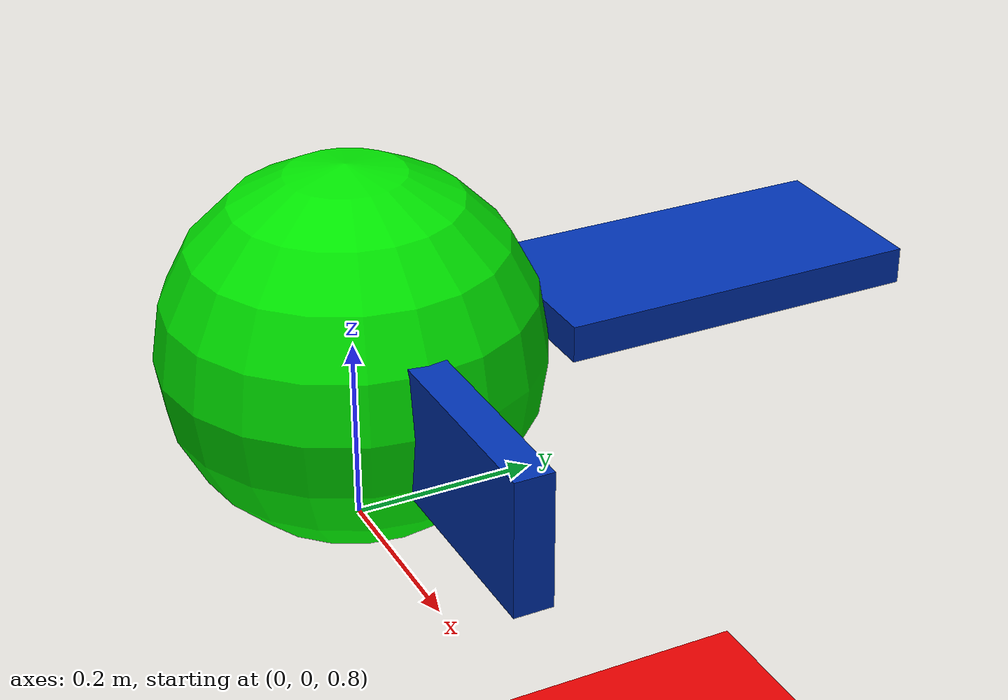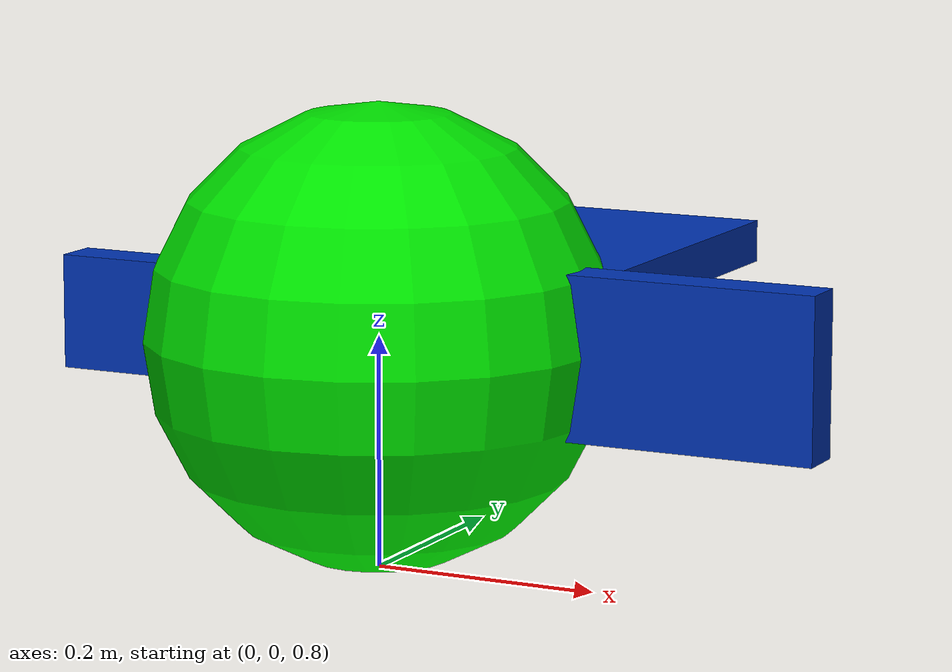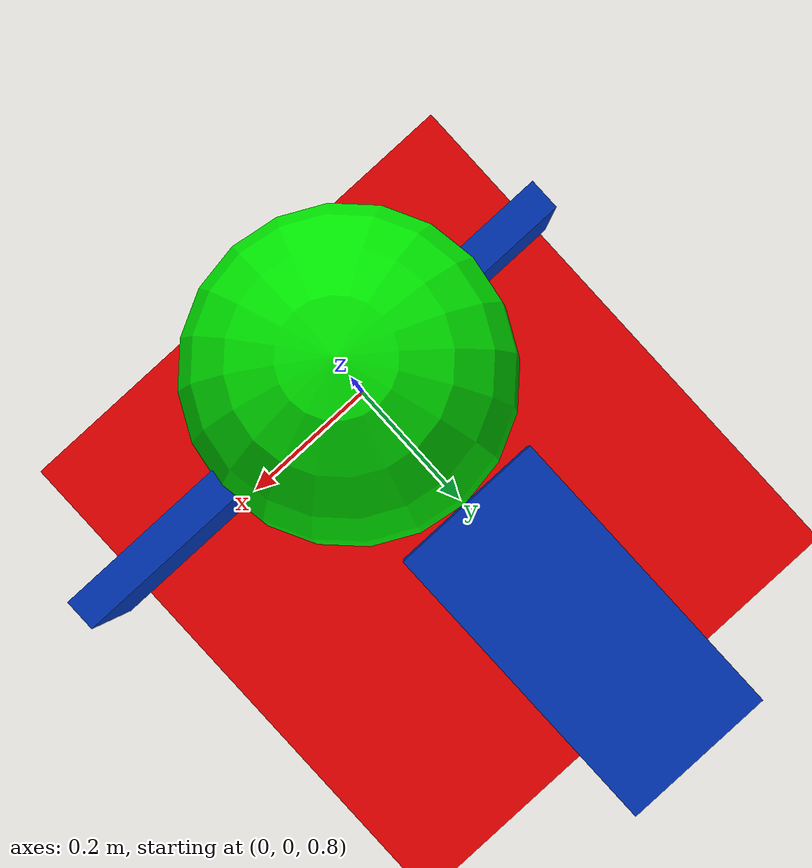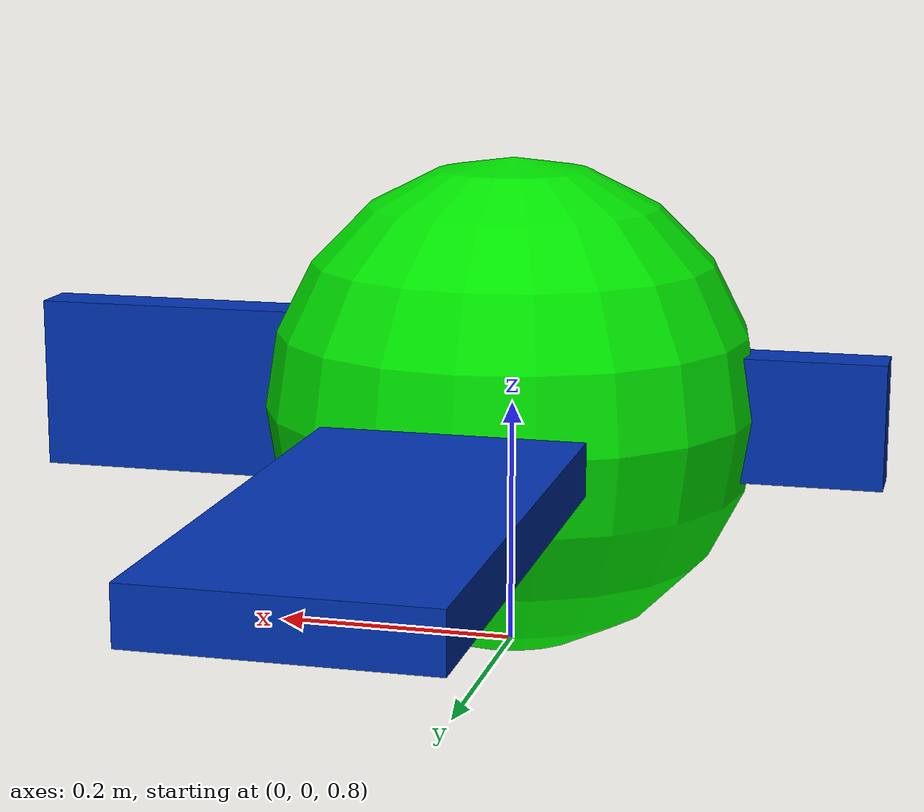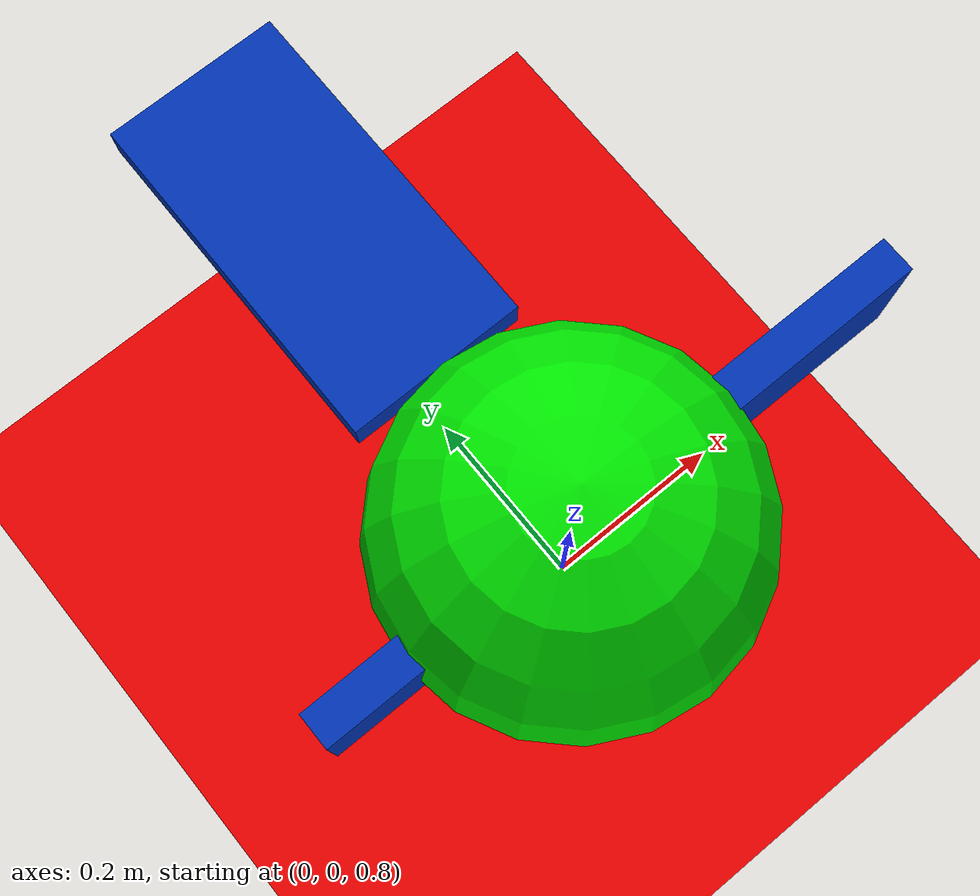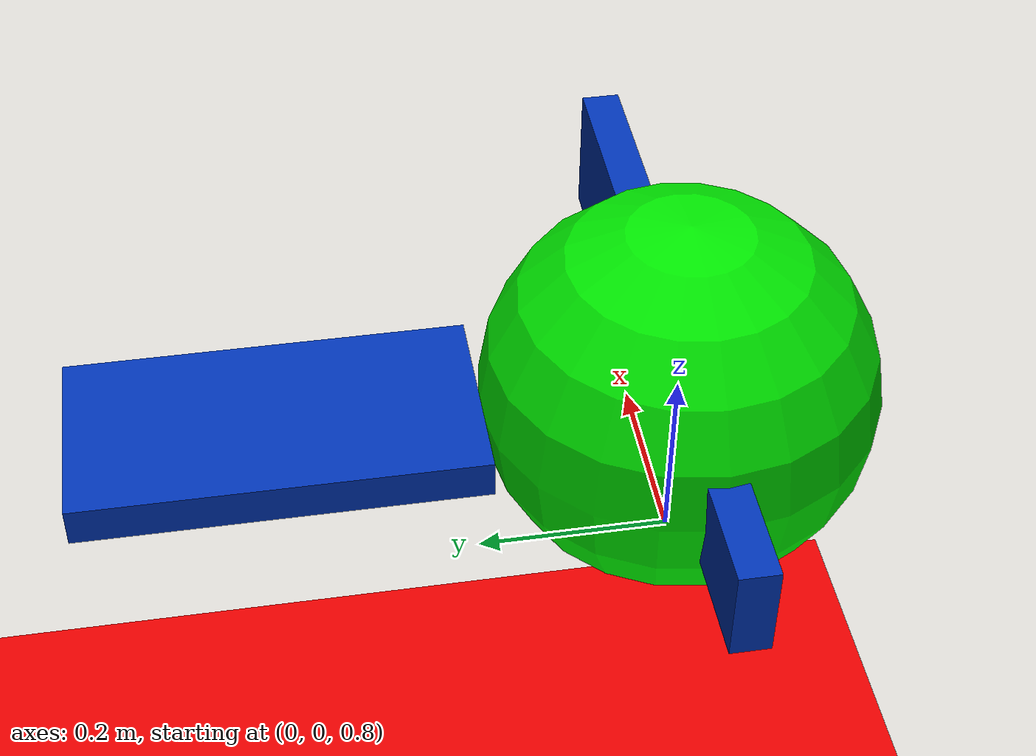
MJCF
<mujoco>
    <option gravity="0 0 0"/>
    <worldbody>
        <light diffuse=".5 .5 .5" pos="0 0 5" dir="0 0 -1"/>

        <geom type="plane" size="10 10 0.1" rgba=".9 0 0 1"/>

        <body name="fish" pos="0 0 1" euler="0 0 0">
            <joint type="free" axis="0 0 0" pos="0 0 0" />
            <body name="body" pos="0 0 0" euler="0 0 0">
                <geom type="sphere" size="0.2" rgba="0 .9 0 1" mass="0.02" />
            </body>

            <body name="fin1" pos=".2 0 0" euler="0 -90 0">
                <joint name="joint1" type="hinge" axis="1 0 0" pos="0 0 .25" range="-45 45" />
                <geom type="box" size="0.07 0.02 0.2" rgba="0 0.2 0.7 1" mass="0.5472251009282674" />
            </body>

            <body name="fin2" pos="-.2 0 0" euler="0 90 0">
                <joint name="joint2" type="hinge" axis="1 0 0" pos="0 0 .25" range="-45 45" />
                <geom type="box" size="0.05 0.02 0.1" rgba="0 0.2 0.7 1" mass="0.4046919392945555" />
            </body>

            <body name="tail" pos="0 0.4 0" euler="0 90 90">
                <joint name="joint3" type="hinge" axis="0 0 1" pos="0 0 0" range="-45 45" />
                <geom type="box" size="0.2 0.02 0.1" rgba="0 0.2 0.7 1" mass="0.4046919392945555" />
            </body>

        </body>
    </worldbody>

    <actuator>
        <motor joint="joint1" name="t1" gear="10" ctrllimited="true" ctrlrange="-5 5" />
        <motor joint="joint2" name="t2" gear="10" ctrllimited="true" ctrlrange="-5 5" />
        <motor joint="joint3" name="t3" gear="10" ctrllimited="true" ctrlrange="-5 5" />

</actuator>

</mujoco>
